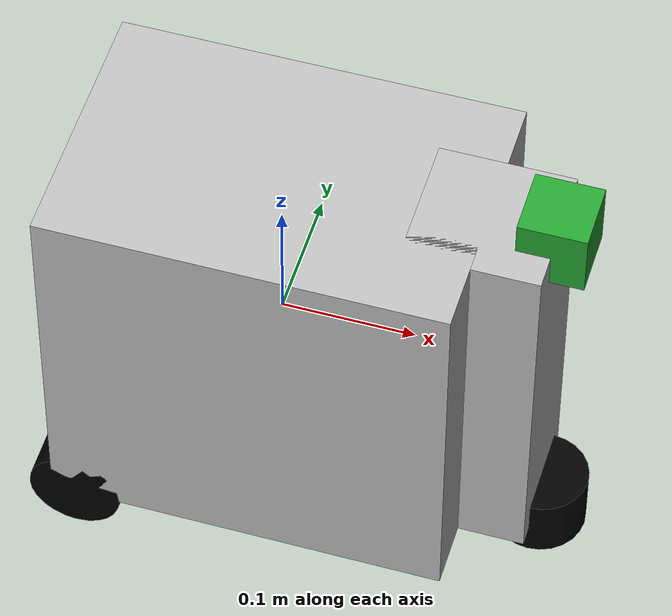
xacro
<?xml version="1.0"?>

<!-- change robot'size from make_robot6.xacro -->

<robot name="myrobot" xmlns:xacro="http://www.ros.org/wiki/xacro">
  <xacro:property name="cameraSize" value="0.05"/>
  <xacro:property name="cameraMass" value="0.1"/>

  <xacro:include filename="$(find gazebo_sim)/src/mybot_ws/src/mybot_description/urdf/mybot.gazebo" />

  <link name="base_link">
    <visual>
      <geometry>
        <box size="0.3 0.2 0.3"/>
      </geometry>
      <material name="silver">
        <color rgba="0.75 0.75 0.75 1"/>
      </material>
    </visual>
    <collision>
      <geometry>
        <box size="0.3 0.2 0.3"/>
      </geometry>
    </collision>
    <inertial>
      <mass value="1.0"/>
      <inertia ixx="0.015" iyy="0.0375" izz="0.0375" ixy="0" ixz="0" iyz="0"/>
    </inertial>
  </link>

  <link name="front_caster">
    <visual>
      <geometry>
        <box size="0.1 0.1 0.3"/>
      </geometry>
      <material name="silver"/>
    </visual>
    <collision>
      <geometry>
        <box size="0.1 0.1 0.3"/>
      </geometry>
    </collision>
    <inertial>
      <mass value="0.1"/>
      <inertia ixx="0.00083" iyy="0.00083" izz="0.000167" ixy="0" ixz="0" iyz="0"/>
    </inertial>
  </link>

  <joint name="front_caster_joint" type="continuous">
    <axis xyz="0 0 1"/>
    <parent link="base_link"/>
    <child link="front_caster"/>
    <origin rpy="0 0 0" xyz="0.15 0 0"/>
  </joint>

  <link name="front_wheel">
    <visual>
      <geometry>
        <cylinder length="0.05" radius="0.035"/>
      </geometry>
      <material name="black"/>
    </visual>
    <collision>
      <geometry>
        <cylinder length="0.05" radius="0.035"/>
      </geometry>
    </collision>
    <inertial>
      <mass value="0.1"/>
      <inertia ixx="5.1458e-5" iyy="5.1458e-5" izz="6.125e-5" ixy="0" ixz="0" iyz="0"/>
    </inertial>
  </link>

  <joint name="front_wheel_joint" type="continuous">
    <axis xyz="0 0 1"/>
    <parent link="front_caster"/>
    <child link="front_wheel"/>
    <origin rpy="0 0 0" xyz="0.05 0 -.15"/>
  </joint>

  <link name="right_wheel">
    <visual>
      <geometry>
        <cylinder length="0.05" radius="0.035"/>
      </geometry>
      <material name="black">
        <color rgba="0 0 0 1"/>
      </material>
    </visual>
    <collision>
      <geometry>
        <cylinder length="0.05" radius="0.035"/>
      </geometry>
    </collision>
    <inertial>
      <mass value="0.1"/>
      <inertia ixx="5.1458e-5" iyy="5.1458e-5" izz="6.125e-5" ixy="0" ixz="0" iyz="0"/>
    </inertial>
  </link>

  <joint name="right_wheel_joint" type="continuous">
    <axis xyz="0 0 1"/>
    <parent link="base_link"/>
    <child link="right_wheel"/>
    <origin rpy="-1.5708 0 0" xyz="-0.1325 -0.075 -.15"/>
  </joint>

  <link name="left_wheel">
    <visual>
      <geometry>
        <cylinder length="0.05" radius="0.035"/>
      </geometry>
      <material name="black"/>
    </visual>
    <collision>
      <geometry>
        <cylinder length="0.05" radius="0.035"/>
      </geometry>
    </collision>
    <inertial>
      <mass value="0.1"/>
      <inertia ixx="5.1458e-5" iyy="5.1458e-5" izz="6.125e-5" ixy="0" ixz="0" iyz="0"/>
    </inertial>
  </link>

  <joint name="left_wheel_joint" type="continuous">
    <axis xyz="0 0 1"/>
    <parent link="base_link"/>
    <child link="left_wheel"/>
    <origin rpy="-1.5708 0 0" xyz="-0.1325 0.075 -.15"/>
  </joint>

  <link name="camera">
    <collision>
      <origin xyz="0 0 0.15" rpy="0 0 0"/>
      <geometry>
        <box size="${cameraSize} ${cameraSize} ${cameraSize}"/>
      </geometry>
    </collision>

    <visual>
      <origin xyz="0 0 0.15" rpy="0 0 0"/>
      <geometry>
        <box size="${cameraSize} ${cameraSize} ${cameraSize}"/>
      </geometry>
      <material name="green"/>
    </visual>

    <inertial>
      <mass value="${cameraMass}" />
      <origin xyz="0 0 0" rpy="0 0 0"/>
      <box_inertia m="${cameraMass}" x="${cameraSize}" y="${cameraSize}" z="${cameraSize}" />
      <inertia ixx="1e-6" ixy="0" ixz="0" iyy="1e-6" iyz="0" izz="1e-6" />
    </inertial>
  </link>

  <joint name="camera_joint" type="fixed">
    <axis xyz="0 1 0" />
    <origin xyz=".2 0 0" rpy="0 0 0"/>
    <parent link="base_link"/>
    <child link="camera"/>
  </joint>

  <gazebo>
    <plugin name="differential_drive_controller" filename="libgazebo_ros_diff_drive.so">
      <leftJoint>left_wheel_joint</leftJoint>
      <rightJoint>right_wheel_joint</rightJoint>
      <robotBaseFrame>base_link</robotBaseFrame>
      <wheelSeparation>0.25</wheelSeparation>
      <wheelDiameter>0.07</wheelDiameter>
      <commandTopic>cmd_vel</commandTopic>
      <publishWheelJointState>true</publishWheelJointState>
    </plugin>
  </gazebo>
</robot>
